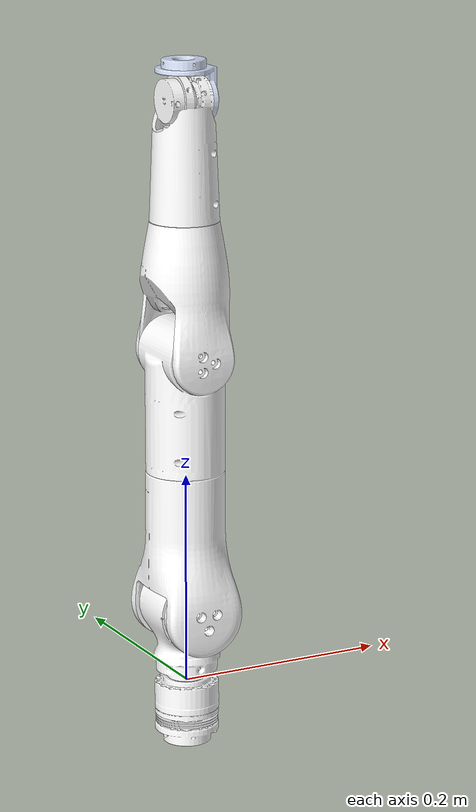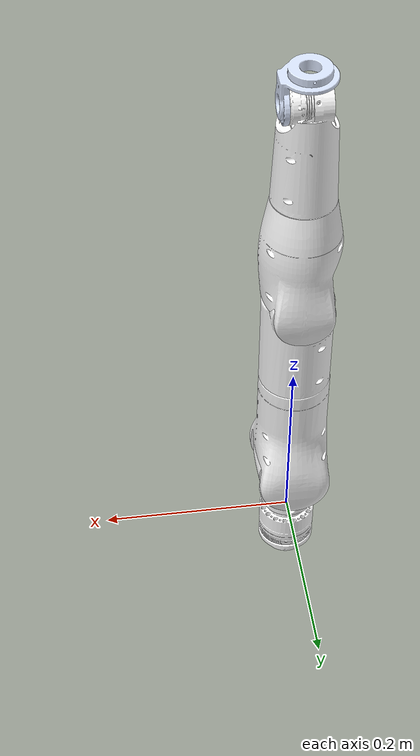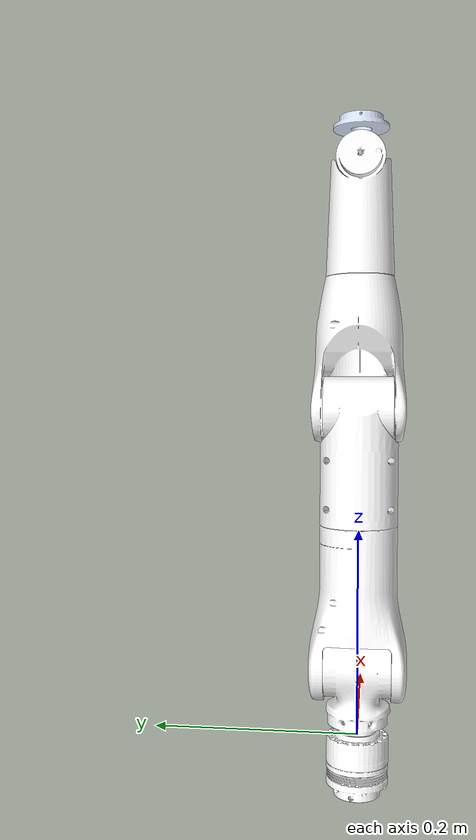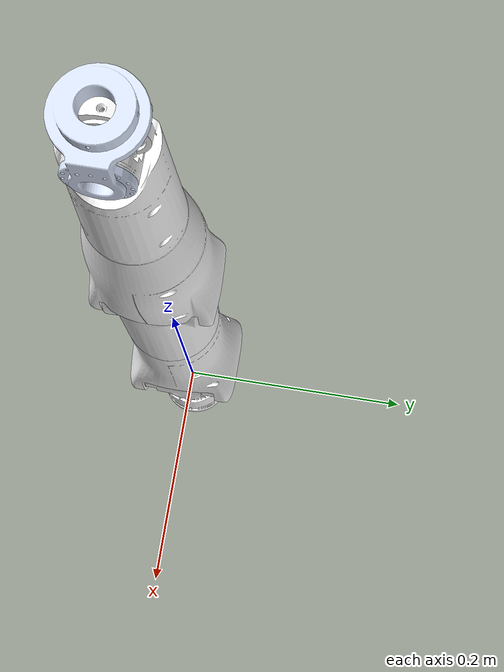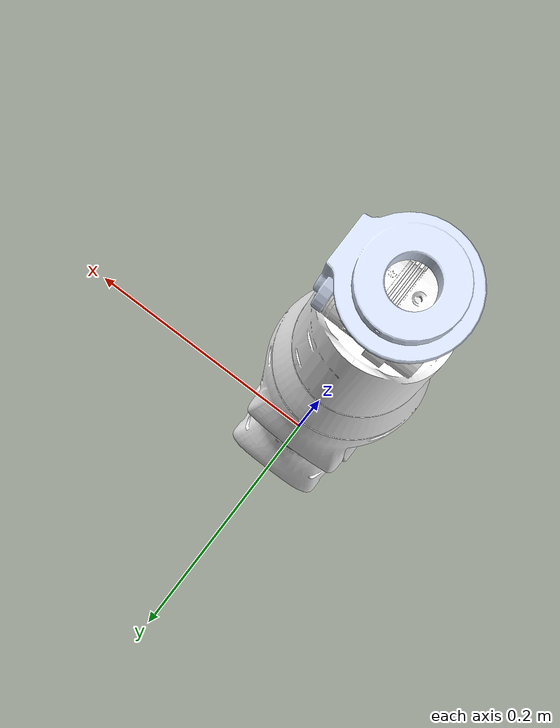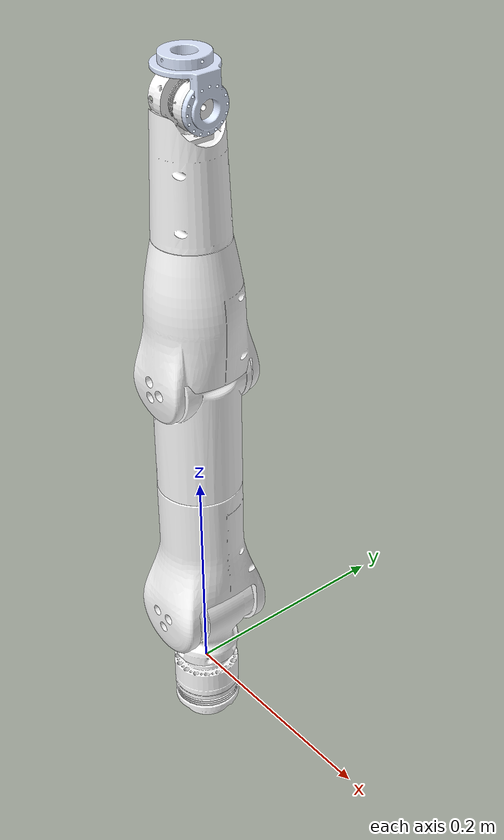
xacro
<?xml version="1.0"?>
<robot xmlns:xacro="http://www.ros.org/wiki/xacro" name="ARM">
  <xacro:arg name="hardware_type" default="fake"/>
  <xacro:arg name="can_interface" default="can1"/>
  <xacro:arg name="baudrate" default="0"/>
  <xacro:arg name="encoder_bw" default="19"/>
  <xacro:arg name="reduction_ratio" default="100.0"/>
  <xacro:arg name="node_ids" default="1,2,3,4,5,6"/>
  <xacro:arg name="joint_indices" default="0,1,2,3,4,5"/>
  <xacro:arg name="position_min" default="0.0,0.0,0.0,0.0,0.0,0.0"/>
  <xacro:arg name="position_max" default="0.0,0.0,0.0,0.0,0.0,0.0"/>
  <xacro:arg name="sync_period_us" default="0"/>
  <xacro:arg name="read_rate_hz" default="50.0"/>
  <xacro:arg name="state_poll_rate_hz" default="0.0"/>
  <xacro:arg name="manual_feedback_timeout_ms" default="15"/>
  <xacro:arg name="feedback_stale_timeout_ms" default="30"/>
  <xacro:arg name="enable_emcy_monitor" default="true"/>
  <xacro:arg name="max_command_step_rad" default="0.005"/>
  <xacro:arg name="max_following_error_rad" default="0.05"/>
  <xacro:arg name="following_error_cycles" default="3"/>
  <xacro:arg name="remote_heartbeat_topic" default="/arm_remote_control/heartbeat"/>
  <xacro:arg name="remote_profile_fingerprint" default="disabled"/>
  <xacro:arg name="remote_watchdog_timeout_ms" default="0"/>
  <xacro:arg name="remote_stop_velocity_threshold_rad_s" default="0.02"/>
  <xacro:arg name="require_full_arm" default="false"/>
  <xacro:arg name="require_position_limits" default="false"/>

  <xacro:include filename="materials.xacro"/>
  <!-- Converted from urdf/original/ARM.urdf; link and joint names are preserved. -->
  <xacro:include filename="original/ARM.model.urdf.xacro"/>
  <xacro:include filename="ros2_control.xacro"/>

  <!-- TODO: Replace this zero-offset tool frame with the real TCP transform if available. -->
  <link name="tool0"/>
  <joint name="J6_to_tool0" type="fixed">
    <origin xyz="0 0 0" rpy="0 0 0"/>
    <parent link="J6"/>
    <child link="tool0"/>
  </joint>

  <xacro:arm_ros2_control
    name="ARMSystem"
    hardware_type="$(arg hardware_type)"
    can_interface="$(arg can_interface)"
    baudrate="$(arg baudrate)"
    encoder_bw="$(arg encoder_bw)"
    reduction_ratio="$(arg reduction_ratio)"
    node_ids="$(arg node_ids)"
    joint_indices="$(arg joint_indices)"
    position_min="$(arg position_min)"
    position_max="$(arg position_max)"
    sync_period_us="$(arg sync_period_us)"
    read_rate_hz="$(arg read_rate_hz)"
    state_poll_rate_hz="$(arg state_poll_rate_hz)"
    manual_feedback_timeout_ms="$(arg manual_feedback_timeout_ms)"
    feedback_stale_timeout_ms="$(arg feedback_stale_timeout_ms)"
    enable_emcy_monitor="$(arg enable_emcy_monitor)"
    max_command_step_rad="$(arg max_command_step_rad)"
    max_following_error_rad="$(arg max_following_error_rad)"
    following_error_cycles="$(arg following_error_cycles)"
    remote_heartbeat_topic="$(arg remote_heartbeat_topic)"
    remote_profile_fingerprint="$(arg remote_profile_fingerprint)"
    remote_watchdog_timeout_ms="$(arg remote_watchdog_timeout_ms)"
    remote_stop_velocity_threshold_rad_s="$(arg remote_stop_velocity_threshold_rad_s)"
    require_full_arm="$(arg require_full_arm)"
    require_position_limits="$(arg require_position_limits)"/>
</robot>

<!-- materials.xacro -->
<robot xmlns:xacro="http://www.ros.org/wiki/xacro">
  <material name="arm_white">
    <color rgba="1.0 1.0 1.0 1.0"/>
  </material>
  <material name="arm_light_blue">
    <color rgba="0.8666666667 0.9098039216 1.0 1.0"/>
  </material>
</robot>

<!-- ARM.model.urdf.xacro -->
<robot
  name="ARM">
  <link
    name="base_link">
    <inertial>
      <origin
        xyz="0.000316292229721025 0.000611724643327152 0.213081217815062"
        rpy="0 0 0" />
      <mass
        value="3.57530804515863" />
      <inertia
        ixx="0.110715360083667"
        ixy="1.99698397001108E-07"
        ixz="-0.000187556798041249"
        iyy="0.110452120670841"
        iyz="9.86207728667352E-05"
        izz="0.00261525910501462" />
    </inertial>
    <visual>
      <origin
        xyz="0 0 0"
        rpy="0 0 0" />
      <geometry>
        <mesh
          filename="package://arm_description/meshes/base_link.STL" />
      </geometry>
      <material
        name="">
        <color
          rgba="1 1 1 1" />
      </material>
    </visual>
    <collision>
      <origin
        xyz="0 0 0"
        rpy="0 0 0" />
      <geometry>
        <mesh
          filename="package://arm_description/meshes/base_link.STL" />
      </geometry>
    </collision>
  </link>
  <link
    name="J1">
    <inertial>
      <origin
        xyz="0.000316292229721024 0.000611724643327153 0.208581217815062"
        rpy="0 0 0" />
      <mass
        value="3.57530804515863" />
      <inertia
        ixx="0.110715360083667"
        ixy="1.99698397001487E-07"
        ixz="-0.000187556798041249"
        iyy="0.110452120670841"
        iyz="9.86207728667347E-05"
        izz="0.00261525910501462" />
    </inertial>
    <visual>
      <origin
        xyz="0 0 0"
        rpy="0 0 0" />
      <geometry>
        <mesh
          filename="package://arm_description/meshes/J1.STL" />
      </geometry>
      <material
        name="">
        <color
          rgba="1 1 1 1" />
      </material>
    </visual>
    <collision>
      <origin
        xyz="0 0 0"
        rpy="0 0 0" />
      <geometry>
        <mesh
          filename="package://arm_description/meshes/J1.STL" />
      </geometry>
    </collision>
  </link>
  <joint
    name="J1"
    type="revolute">
    <origin
      xyz="0 0 0.0045"
      rpy="0 0 0" />
    <parent
      link="base_link" />
    <child
      link="J1" />
    <axis
      xyz="0 0 1" />
    <limit
      lower="-3.14"
      upper="3.14"
      effort="0"
      velocity="0" />
  </joint>
  <link
    name="J2">
    <inertial>
      <origin
        xyz="-0.000315829329359078 -0.14348121784581 -0.000611724643327245"
        rpy="0 0 0" />
      <mass
        value="3.57530804515863" />
      <inertia
        ixx="0.110715360120185"
        ixy="-0.000187546274062507"
        ixz="1.99688795872927E-07"
        iyy="0.00261525906849683"
        iyz="9.86207728861282E-05"
        izz="0.110452120670841" />
    </inertial>
    <visual>
      <origin
        xyz="0 0 0"
        rpy="0 0 0" />
      <geometry>
        <mesh
          filename="package://arm_description/meshes/J2.STL" />
      </geometry>
      <material
        name="">
        <color
          rgba="1 1 1 1" />
      </material>
    </visual>
    <collision>
      <origin
        xyz="0 0 0"
        rpy="0 0 0" />
      <geometry>
        <mesh
          filename="package://arm_description/meshes/J2.STL" />
      </geometry>
    </collision>
  </link>
  <joint
    name="J2"
    type="revolute">
    <origin
      xyz="0 0 0.0651"
      rpy="-1.5708 0 -3.1416" />
    <parent
      link="J1" />
    <child
      link="J2" />
    <axis
      xyz="0 0 1" />
    <limit
      lower="-1.57"
      upper="1.57"
      effort="0"
      velocity="0" />
  </joint>
  <link
    name="J3">
    <inertial>
      <origin
        xyz="-0.000611724643327671 0.000316292229720983 0.0125085757726616"
        rpy="0 0 0" />
      <mass
        value="3.57530804515863" />
      <inertia
        ixx="0.110452120670841"
        ixy="-1.99698397000572E-07"
        ixz="-9.86207728664461E-05"
        iyy="0.110715360083667"
        iyz="-0.000187556798041212"
        izz="0.00261525910501462" />
    </inertial>
    <visual>
      <origin
        xyz="0 0 0"
        rpy="0 0 0" />
      <geometry>
        <mesh
          filename="package://arm_description/meshes/J3.STL" />
      </geometry>
      <material
        name="">
        <color
          rgba="1 1 1 1" />
      </material>
    </visual>
    <collision>
      <origin
        xyz="0 0 0"
        rpy="0 0 0" />
      <geometry>
        <mesh
          filename="package://arm_description/meshes/J3.STL" />
      </geometry>
    </collision>
  </link>
  <joint
    name="J3"
    type="revolute">
    <origin
      xyz="0 -0.13097 0"
      rpy="1.5708 -1.5708 0" />
    <parent
      link="J2" />
    <child
      link="J3" />
    <axis
      xyz="0 0 1" />
    <limit
      lower="-3.14"
      upper="3.14"
      effort="0"
      velocity="0" />
  </joint>
  <link
    name="J4">
    <inertial>
      <origin
        xyz="0.000255245608726876 -0.102058257967522 -0.000611724643327245"
        rpy="0 0 0" />
      <mass
        value="3.57530804515863" />
      <inertia
        ixx="0.110715360083667"
        ixy="-0.000187556798041251"
        ixz="-1.99698397001027E-07"
        iyy="0.00261525910501462"
        iyz="-9.86207728666872E-05"
        izz="0.110452120670841" />
    </inertial>
    <visual>
      <origin
        xyz="0 0 0"
        rpy="0 0 0" />
      <geometry>
        <mesh
          filename="package://arm_description/meshes/J4.STL" />
      </geometry>
      <material
        name="">
        <color
          rgba="1 1 1 1" />
      </material>
    </visual>
    <collision>
      <origin
        xyz="0 0 0"
        rpy="0 0 0" />
      <geometry>
        <mesh
          filename="package://arm_description/meshes/J4.STL" />
      </geometry>
    </collision>
  </link>
  <joint
    name="J4"
    type="revolute">
    <origin
      xyz="0 6.1047E-05 0.11457"
      rpy="1.5708 0 1.5708" />
    <parent
      link="J3" />
    <child
      link="J4" />
    <axis
      xyz="0 0 -1" />
    <limit
      lower="-1.57"
      upper="1.57"
      effort="0"
      velocity="0" />
  </joint>
  <link
    name="J5">
    <inertial>
      <origin
        xyz="0.000316292229720947 0.000611724644171984 -0.223393774313701"
        rpy="0 0 0" />
      <mass
        value="3.57530804515863" />
      <inertia
        ixx="0.110715360083667"
        ixy="1.99698396241177E-07"
        ixz="-0.000187556798041252"
        iyy="0.110452120670842"
        iyz="9.86207724298961E-05"
        izz="0.00261525910501382" />
    </inertial>
    <visual>
      <origin
        xyz="0 0 0"
        rpy="0 0 0" />
      <geometry>
        <mesh
          filename="package://arm_description/meshes/J5.STL" />
      </geometry>
      <material
        name="">
        <color
          rgba="1 1 1 1" />
      </material>
    </visual>
    <collision>
      <origin
        xyz="0 0 0"
        rpy="0 0 0" />
      <geometry>
        <mesh
          filename="package://arm_description/meshes/J5.STL" />
      </geometry>
    </collision>
  </link>
  <joint
    name="J5"
    type="revolute">
    <origin
      xyz="-6.1047E-05 0.12134 0"
      rpy="-1.5708 0 0" />
    <parent
      link="J4" />
    <child
      link="J5" />
    <axis
      xyz="0 0 1" />
    <limit
      lower="-3.14"
      upper="3.14"
      effort="0"
      velocity="0" />
  </joint>
  <link
    name="J6">
    <inertial>
      <origin
        xyz="7.12657008552315E-09 0.0213446329881337 -0.0121523647950665"
        rpy="0 0 0" />
      <mass
        value="0.0596828739578881" />
      <inertia
        ixx="2.66893847532864E-05"
        ixy="-3.70911477775847E-12"
        ixz="3.17285138880359E-12"
        iyy="2.22221774028086E-05"
        iyz="8.14833080528861E-06"
        izz="2.10723078887235E-05" />
    </inertial>
    <visual>
      <origin
        xyz="0 0 0"
        rpy="0 0 0" />
      <geometry>
        <mesh
          filename="package://arm_description/meshes/J6.STL" />
      </geometry>
      <material
        name="">
        <color
          rgba="0.866666666666667 0.909803921568627 1 1" />
      </material>
    </visual>
    <collision>
      <origin
        xyz="0 0 0"
        rpy="0 0 0" />
      <geometry>
        <mesh
          filename="package://arm_description/meshes/J6.STL" />
      </geometry>
    </collision>
  </link>
  <joint
    name="J6"
    type="revolute">
    <origin
      xyz="0.020062 0.00039936 0.1133"
      rpy="1.5708 0 1.5708" />
    <parent
      link="J5" />
    <child
      link="J6" />
    <axis
      xyz="0 0 1" />
    <limit
      lower="-1.57"
      upper="1.57"
      effort="0"
      velocity="0" />
  </joint>
</robot>
